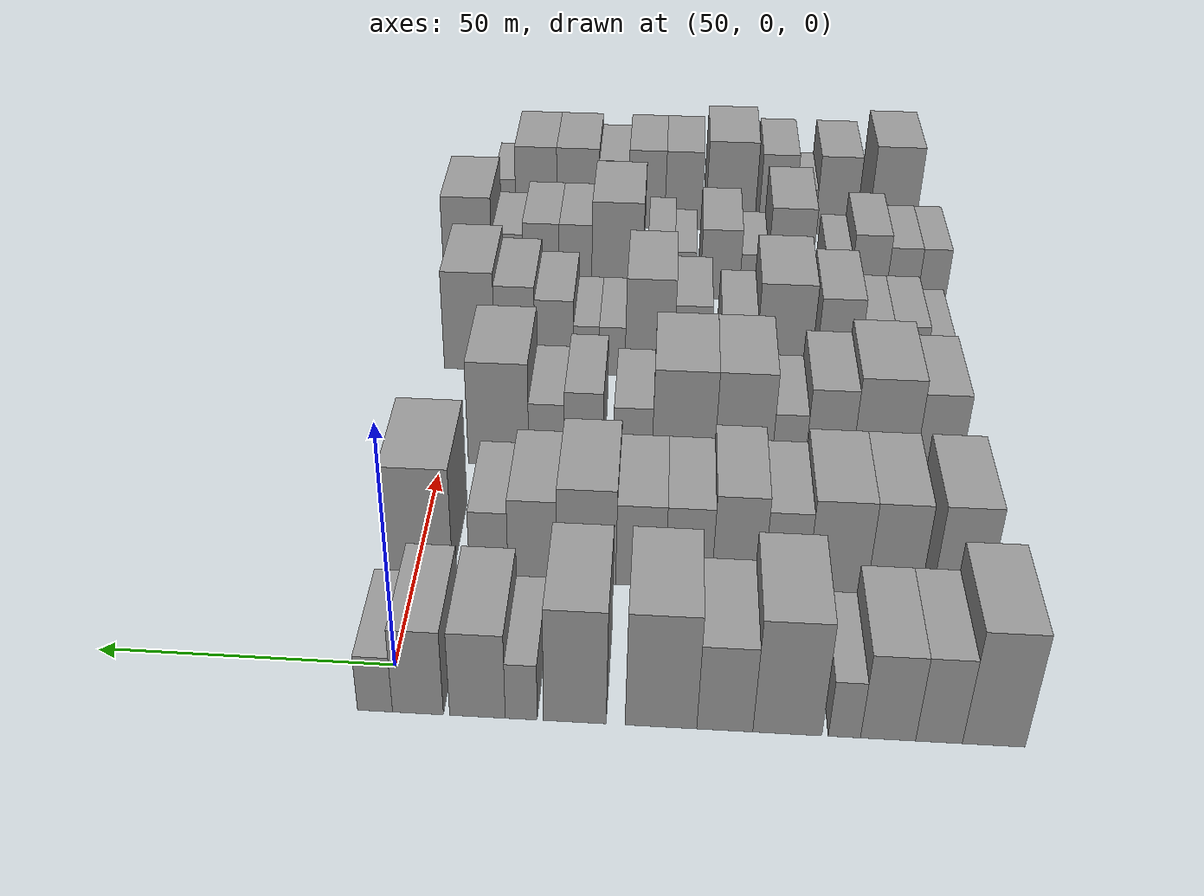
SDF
<sdf version="1.6">
 <world name="default">
  <model name="building_45">
   <static>1</static>
   <pose>50.0000 -95.6676 0 0.000000 0.000000 0.000000</pose>
   <link name="link">
    <pose>0 0 12.00 0 0 0</pose>
    <collision name="collision"><geometry><box><size>20.0000 9.6616 24.0000</size></box></geometry></collision>
    <visual name="visual">
     <cast_shadows>0</cast_shadows>
     <geometry><box><size>20.0000 9.6616 24.0000</size></box></geometry>
     <material>
      <script>
       <uri>model://grey_wall/materials/scripts</uri>
       <uri>model://grey_wall/materials/textures</uri>
       <name>vrc/grey_wall</name>
      </script>
     </material>
    </visual>
   </link>
  </model>
  <model name="building_46">
   <static>1</static>
   <pose>50.0000 -87.2326 0 0.000000 0.000000 0.000000</pose>
   <link name="link">
    <pose>0 0 9.00 0 0 0</pose>
    <collision name="collision"><geometry><box><size>20.0000 7.2084 18.0000</size></box></geometry></collision>
    <visual name="visual">
     <cast_shadows>0</cast_shadows>
     <geometry><box><size>20.0000 7.2084 18.0000</size></box></geometry>
     <material>
      <script>
       <uri>model://grey_wall/materials/scripts</uri>
       <uri>model://grey_wall/materials/textures</uri>
       <name>vrc/grey_wall</name>
      </script>
     </material>
    </visual>
   </link>
  </model>
  <model name="building_47">
   <static>1</static>
   <pose>50.0000 -79.3638 0 0.000000 0.000000 0.000000</pose>
   <link name="link">
    <pose>0 0 9.00 0 0 0</pose>
    <collision name="collision"><geometry><box><size>20.0000 8.5292 18.0000</size></box></geometry></collision>
    <visual name="visual">
     <cast_shadows>0</cast_shadows>
     <geometry><box><size>20.0000 8.5292 18.0000</size></box></geometry>
     <material>
      <script>
       <uri>model://grey_wall/materials/scripts</uri>
       <uri>model://grey_wall/materials/textures</uri>
       <name>vrc/grey_wall</name>
      </script>
     </material>
    </visual>
   </link>
  </model>
  <model name="building_48">
   <static>1</static>
   <pose>50.0000 -72.6055 0 0.000000 0.000000 0.000000</pose>
   <link name="link">
    <pose>0 0 6.00 0 0 0</pose>
    <collision name="collision"><geometry><box><size>20.0000 4.9873 12.0000</size></box></geometry></collision>
    <visual name="visual">
     <cast_shadows>0</cast_shadows>
     <geometry><box><size>20.0000 4.9873 12.0000</size></box></geometry>
     <material>
      <script>
       <uri>model://grey_wall/materials/scripts</uri>
       <uri>model://grey_wall/materials/textures</uri>
       <name>vrc/grey_wall</name>
      </script>
     </material>
    </visual>
   </link>
  </model>
  <model name="building_49">
   <static>1</static>
   <pose>50.0000 -63.7204 0 0.000000 0.000000 0.000000</pose>
   <link name="link">
    <pose>0 0 12.00 0 0 0</pose>
    <collision name="collision"><geometry><box><size>20.0000 10.7830 24.0000</size></box></geometry></collision>
    <visual name="visual">
     <cast_shadows>0</cast_shadows>
     <geometry><box><size>20.0000 10.7830 24.0000</size></box></geometry>
     <material>
      <script>
       <uri>model://grey_wall/materials/scripts</uri>
       <uri>model://grey_wall/materials/textures</uri>
       <name>vrc/grey_wall</name>
      </script>
     </material>
    </visual>
   </link>
  </model>
  <model name="building_50">
   <static>1</static>
   <pose>50.0000 -53.9373 0 0.000000 0.000000 0.000000</pose>
   <link name="link">
    <pose>0 0 9.00 0 0 0</pose>
    <collision name="collision"><geometry><box><size>20.0000 8.7832 18.0000</size></box></geometry></collision>
    <visual name="visual">
     <cast_shadows>0</cast_shadows>
     <geometry><box><size>20.0000 8.7832 18.0000</size></box></geometry>
     <material>
      <script>
       <uri>model://grey_wall/materials/scripts</uri>
       <uri>model://grey_wall/materials/textures</uri>
       <name>vrc/grey_wall</name>
      </script>
     </material>
    </visual>
   </link>
  </model>
  <model name="building_51">
   <static>1</static>
   <pose>50.0000 -43.9038 0 0.000000 0.000000 0.000000</pose>
   <link name="link">
    <pose>0 0 12.00 0 0 0</pose>
    <collision name="collision"><geometry><box><size>20.0000 11.2838 24.0000</size></box></geometry></collision>
    <visual name="visual">
     <cast_shadows>0</cast_shadows>
     <geometry><box><size>20.0000 11.2838 24.0000</size></box></geometry>
     <material>
      <script>
       <uri>model://grey_wall/materials/scripts</uri>
       <uri>model://grey_wall/materials/textures</uri>
       <name>vrc/grey_wall</name>
      </script>
     </material>
    </visual>
   </link>
  </model>
  <model name="building_52">
   <static>1</static>
   <pose>50.0000 -30.2886 0 0.000000 0.000000 0.000000</pose>
   <link name="link">
    <pose>0 0 12.00 0 0 0</pose>
    <collision name="collision"><geometry><box><size>20.0000 9.9465 24.0000</size></box></geometry></collision>
    <visual name="visual">
     <cast_shadows>0</cast_shadows>
     <geometry><box><size>20.0000 9.9465 24.0000</size></box></geometry>
     <material>
      <script>
       <uri>model://grey_wall/materials/scripts</uri>
       <uri>model://grey_wall/materials/textures</uri>
       <name>vrc/grey_wall</name>
      </script>
     </material>
    </visual>
   </link>
  </model>
  <model name="building_53">
   <static>1</static>
   <pose>50.0000 -21.7753 0 0.000000 0.000000 0.000000</pose>
   <link name="link">
    <pose>0 0 6.00 0 0 0</pose>
    <collision name="collision"><geometry><box><size>20.0000 5.0801 12.0000</size></box></geometry></collision>
    <visual name="visual">
     <cast_shadows>0</cast_shadows>
     <geometry><box><size>20.0000 5.0801 12.0000</size></box></geometry>
     <material>
      <script>
       <uri>model://grey_wall/materials/scripts</uri>
       <uri>model://grey_wall/materials/textures</uri>
       <name>vrc/grey_wall</name>
      </script>
     </material>
    </visual>
   </link>
  </model>
  <model name="building_54">
   <static>1</static>
   <pose>50.0000 -14.7899 0 0.000000 0.000000 0.000000</pose>
   <link name="link">
    <pose>0 0 9.00 0 0 0</pose>
    <collision name="collision"><geometry><box><size>20.0000 8.8905 18.0000</size></box></geometry></collision>
    <visual name="visual">
     <cast_shadows>0</cast_shadows>
     <geometry><box><size>20.0000 8.8905 18.0000</size></box></geometry>
     <material>
      <script>
       <uri>model://grey_wall/materials/scripts</uri>
       <uri>model://grey_wall/materials/textures</uri>
       <name>vrc/grey_wall</name>
      </script>
     </material>
    </visual>
   </link>
  </model>
  <model name="building_55">
   <static>1</static>
   <pose>50.0000 -5.2620 0 0.000000 0.000000 0.000000</pose>
   <link name="link">
    <pose>0 0 9.00 0 0 0</pose>
    <collision name="collision"><geometry><box><size>20.0000 8.1654 18.0000</size></box></geometry></collision>
    <visual name="visual">
     <cast_shadows>0</cast_shadows>
     <geometry><box><size>20.0000 8.1654 18.0000</size></box></geometry>
     <material>
      <script>
       <uri>model://grey_wall/materials/scripts</uri>
       <uri>model://grey_wall/materials/textures</uri>
       <name>vrc/grey_wall</name>
      </script>
     </material>
    </visual>
   </link>
  </model>
  <model name="building_56">
   <static>1</static>
   <pose>50.0000 1.6433 0 0.000000 0.000000 0.000000</pose>
   <link name="link">
    <pose>0 0 6.00 0 0 0</pose>
    <collision name="collision"><geometry><box><size>20.0000 5.6452 12.0000</size></box></geometry></collision>
    <visual name="visual">
     <cast_shadows>0</cast_shadows>
     <geometry><box><size>20.0000 5.6452 12.0000</size></box></geometry>
     <material>
      <script>
       <uri>model://grey_wall/materials/scripts</uri>
       <uri>model://grey_wall/materials/textures</uri>
       <name>vrc/grey_wall</name>
      </script>
     </material>
    </visual>
   </link>
  </model>
  <model name="building_149">
   <static>1</static>
   <pose>82.0000 -95.0042 0 0.000000 0.000000 0.000000</pose>
   <link name="link">
    <pose>0 0 10.50 0 0 0</pose>
    <collision name="collision"><geometry><box><size>20.0000 9.5501 21.0000</size></box></geometry></collision>
    <visual name="visual">
     <cast_shadows>0</cast_shadows>
     <geometry><box><size>20.0000 9.5501 21.0000</size></box></geometry>
     <material>
      <script>
       <uri>model://grey_wall/materials/scripts</uri>
       <uri>model://grey_wall/materials/textures</uri>
       <name>vrc/grey_wall</name>
      </script>
     </material>
    </visual>
   </link>
  </model>
  <model name="building_150">
   <static>1</static>
   <pose>82.0000 -83.6209 0 0.000000 0.000000 0.000000</pose>
   <link name="link">
    <pose>0 0 10.50 0 0 0</pose>
    <collision name="collision"><geometry><box><size>20.0000 9.2165 21.0000</size></box></geometry></collision>
    <visual name="visual">
     <cast_shadows>0</cast_shadows>
     <geometry><box><size>20.0000 9.2165 21.0000</size></box></geometry>
     <material>
      <script>
       <uri>model://grey_wall/materials/scripts</uri>
       <uri>model://grey_wall/materials/textures</uri>
       <name>vrc/grey_wall</name>
      </script>
     </material>
    </visual>
   </link>
  </model>
  <model name="building_151">
   <static>1</static>
   <pose>82.0000 -73.8313 0 0.000000 0.000000 0.000000</pose>
   <link name="link">
    <pose>0 0 10.50 0 0 0</pose>
    <collision name="collision"><geometry><box><size>20.0000 10.3627 21.0000</size></box></geometry></collision>
    <visual name="visual">
     <cast_shadows>0</cast_shadows>
     <geometry><box><size>20.0000 10.3627 21.0000</size></box></geometry>
     <material>
      <script>
       <uri>model://grey_wall/materials/scripts</uri>
       <uri>model://grey_wall/materials/textures</uri>
       <name>vrc/grey_wall</name>
      </script>
     </material>
    </visual>
   </link>
  </model>
  <model name="building_152">
   <static>1</static>
   <pose>82.0000 -64.8846 0 0.000000 0.000000 0.000000</pose>
   <link name="link">
    <pose>0 0 9.00 0 0 0</pose>
    <collision name="collision"><geometry><box><size>20.0000 7.5306 18.0000</size></box></geometry></collision>
    <visual name="visual">
     <cast_shadows>0</cast_shadows>
     <geometry><box><size>20.0000 7.5306 18.0000</size></box></geometry>
     <material>
      <script>
       <uri>model://grey_wall/materials/scripts</uri>
       <uri>model://grey_wall/materials/textures</uri>
       <name>vrc/grey_wall</name>
      </script>
     </material>
    </visual>
   </link>
  </model>
  <model name="building_153">
   <static>1</static>
   <pose>82.0000 -56.6148 0 0.000000 0.000000 0.000000</pose>
   <link name="link">
    <pose>0 0 10.50 0 0 0</pose>
    <collision name="collision"><geometry><box><size>20.0000 9.0090 21.0000</size></box></geometry></collision>
    <visual name="visual">
     <cast_shadows>0</cast_shadows>
     <geometry><box><size>20.0000 9.0090 21.0000</size></box></geometry>
     <material>
      <script>
       <uri>model://grey_wall/materials/scripts</uri>
       <uri>model://grey_wall/materials/textures</uri>
       <name>vrc/grey_wall</name>
      </script>
     </material>
    </visual>
   </link>
  </model>
  <model name="building_154">
   <static>1</static>
   <pose>82.0000 -48.0225 0 0.000000 0.000000 0.000000</pose>
   <link name="link">
    <pose>0 0 9.00 0 0 0</pose>
    <collision name="collision"><geometry><box><size>20.0000 8.1756 18.0000</size></box></geometry></collision>
    <visual name="visual">
     <cast_shadows>0</cast_shadows>
     <geometry><box><size>20.0000 8.1756 18.0000</size></box></geometry>
     <material>
      <script>
       <uri>model://grey_wall/materials/scripts</uri>
       <uri>model://grey_wall/materials/textures</uri>
       <name>vrc/grey_wall</name>
      </script>
     </material>
    </visual>
   </link>
  </model>
  <model name="building_155">
   <static>1</static>
   <pose>82.0000 -39.6415 0 0.000000 0.000000 0.000000</pose>
   <link name="link">
    <pose>0 0 9.00 0 0 0</pose>
    <collision name="collision"><geometry><box><size>20.0000 8.5864 18.0000</size></box></geometry></collision>
    <visual name="visual">
     <cast_shadows>0</cast_shadows>
     <geometry><box><size>20.0000 8.5864 18.0000</size></box></geometry>
     <material>
      <script>
       <uri>model://grey_wall/materials/scripts</uri>
       <uri>model://grey_wall/materials/textures</uri>
       <name>vrc/grey_wall</name>
      </script>
     </material>
    </visual>
   </link>
  </model>
  <model name="building_156">
   <static>1</static>
   <pose>82.0000 -30.1468 0 0.000000 0.000000 0.000000</pose>
   <link name="link">
    <pose>0 0 10.50 0 0 0</pose>
    <collision name="collision"><geometry><box><size>20.0000 10.4030 21.0000</size></box></geometry></collision>
    <visual name="visual">
     <cast_shadows>0</cast_shadows>
     <geometry><box><size>20.0000 10.4030 21.0000</size></box></geometry>
     <material>
      <script>
       <uri>model://grey_wall/materials/scripts</uri>
       <uri>model://grey_wall/materials/textures</uri>
       <name>vrc/grey_wall</name>
      </script>
     </material>
    </visual>
   </link>
  </model>
  <model name="building_157">
   <static>1</static>
   <pose>82.0000 -20.6657 0 0.000000 0.000000 0.000000</pose>
   <link name="link">
    <pose>0 0 9.00 0 0 0</pose>
    <collision name="collision"><geometry><box><size>20.0000 8.5592 18.0000</size></box></geometry></collision>
    <visual name="visual">
     <cast_shadows>0</cast_shadows>
     <geometry><box><size>20.0000 8.5592 18.0000</size></box></geometry>
     <material>
      <script>
       <uri>model://grey_wall/materials/scripts</uri>
       <uri>model://grey_wall/materials/textures</uri>
       <name>vrc/grey_wall</name>
      </script>
     </material>
    </visual>
   </link>
  </model>
  <model name="building_158">
   <static>1</static>
   <pose>82.0000 -12.9702 0 0.000000 0.000000 0.000000</pose>
   <link name="link">
    <pose>0 0 7.50 0 0 0</pose>
    <collision name="collision"><geometry><box><size>20.0000 6.8317 15.0000</size></box></geometry></collision>
    <visual name="visual">
     <cast_shadows>0</cast_shadows>
     <geometry><box><size>20.0000 6.8317 15.0000</size></box></geometry>
     <material>
      <script>
       <uri>model://grey_wall/materials/scripts</uri>
       <uri>model://grey_wall/materials/textures</uri>
       <name>vrc/grey_wall</name>
      </script>
     </material>
    </visual>
   </link>
  </model>
  <model name="building_159">
   <static>1</static>
   <pose>82.0000 -0.5578 0 0.000000 0.000000 0.000000</pose>
   <link name="link">
    <pose>0 0 12.00 0 0 0</pose>
    <collision name="collision"><geometry><box><size>20.0000 11.9931 24.0000</size></box></geometry></collision>
    <visual name="visual">
     <cast_shadows>0</cast_shadows>
     <geometry><box><size>20.0000 11.9931 24.0000</size></box></geometry>
     <material>
      <script>
       <uri>model://grey_wall/materials/scripts</uri>
       <uri>model://grey_wall/materials/textures</uri>
       <name>vrc/grey_wall</name>
      </script>
     </material>
    </visual>
   </link>
  </model>
  <model name="building_267">
   <static>1</static>
   <pose>114.0000 -95.1274 0 0.000000 0.000000 0.000000</pose>
   <link name="link">
    <pose>0 0 10.50 0 0 0</pose>
    <collision name="collision"><geometry><box><size>20.0000 8.5143 21.0000</size></box></geometry></collision>
    <visual name="visual">
     <cast_shadows>0</cast_shadows>
     <geometry><box><size>20.0000 8.5143 21.0000</size></box></geometry>
     <material>
      <script>
       <uri>model://grey_wall/materials/scripts</uri>
       <uri>model://grey_wall/materials/textures</uri>
       <name>vrc/grey_wall</name>
      </script>
     </material>
    </visual>
   </link>
  </model>
  <model name="building_268">
   <static>1</static>
   <pose>114.0000 -84.8776 0 0.000000 0.000000 0.000000</pose>
   <link name="link">
    <pose>0 0 12.00 0 0 0</pose>
    <collision name="collision"><geometry><box><size>20.0000 11.9854 24.0000</size></box></geometry></collision>
    <visual name="visual">
     <cast_shadows>0</cast_shadows>
     <geometry><box><size>20.0000 11.9854 24.0000</size></box></geometry>
     <material>
      <script>
       <uri>model://grey_wall/materials/scripts</uri>
       <uri>model://grey_wall/materials/textures</uri>
       <name>vrc/grey_wall</name>
      </script>
     </material>
    </visual>
   </link>
  </model>
  <model name="building_269">
   <static>1</static>
   <pose>114.0000 -74.4719 0 0.000000 0.000000 0.000000</pose>
   <link name="link">
    <pose>0 0 10.50 0 0 0</pose>
    <collision name="collision"><geometry><box><size>20.0000 8.8259 21.0000</size></box></geometry></collision>
    <visual name="visual">
     <cast_shadows>0</cast_shadows>
     <geometry><box><size>20.0000 8.8259 21.0000</size></box></geometry>
     <material>
      <script>
       <uri>model://grey_wall/materials/scripts</uri>
       <uri>model://grey_wall/materials/textures</uri>
       <name>vrc/grey_wall</name>
      </script>
     </material>
    </visual>
   </link>
  </model>
  <model name="building_270">
   <static>1</static>
   <pose>114.0000 -66.9127 0 0.000000 0.000000 0.000000</pose>
   <link name="link">
    <pose>0 0 7.50 0 0 0</pose>
    <collision name="collision"><geometry><box><size>20.0000 6.2924 15.0000</size></box></geometry></collision>
    <visual name="visual">
     <cast_shadows>0</cast_shadows>
     <geometry><box><size>20.0000 6.2924 15.0000</size></box></geometry>
     <material>
      <script>
       <uri>model://grey_wall/materials/scripts</uri>
       <uri>model://grey_wall/materials/textures</uri>
       <name>vrc/grey_wall</name>
      </script>
     </material>
    </visual>
   </link>
  </model>
  <model name="building_271">
   <static>1</static>
   <pose>114.0000 -58.3142 0 0.000000 0.000000 0.000000</pose>
   <link name="link">
    <pose>0 0 12.00 0 0 0</pose>
    <collision name="collision"><geometry><box><size>20.0000 10.9047 24.0000</size></box></geometry></collision>
    <visual name="visual">
     <cast_shadows>0</cast_shadows>
     <geometry><box><size>20.0000 10.9047 24.0000</size></box></geometry>
     <material>
      <script>
       <uri>model://grey_wall/materials/scripts</uri>
       <uri>model://grey_wall/materials/textures</uri>
       <name>vrc/grey_wall</name>
      </script>
     </material>
    </visual>
   </link>
  </model>
  <model name="building_272">
   <static>1</static>
   <pose>114.0000 -46.8731 0 0.000000 0.000000 0.000000</pose>
   <link name="link">
    <pose>0 0 12.00 0 0 0</pose>
    <collision name="collision"><geometry><box><size>20.0000 11.9774 24.0000</size></box></geometry></collision>
    <visual name="visual">
     <cast_shadows>0</cast_shadows>
     <geometry><box><size>20.0000 11.9774 24.0000</size></box></geometry>
     <material>
      <script>
       <uri>model://grey_wall/materials/scripts</uri>
       <uri>model://grey_wall/materials/textures</uri>
       <name>vrc/grey_wall</name>
      </script>
     </material>
    </visual>
   </link>
  </model>
  <model name="building_273">
   <static>1</static>
   <pose>114.0000 -37.1674 0 0.000000 0.000000 0.000000</pose>
   <link name="link">
    <pose>0 0 7.50 0 0 0</pose>
    <collision name="collision"><geometry><box><size>20.0000 7.4342 15.0000</size></box></geometry></collision>
    <visual name="visual">
     <cast_shadows>0</cast_shadows>
     <geometry><box><size>20.0000 7.4342 15.0000</size></box></geometry>
     <material>
      <script>
       <uri>model://grey_wall/materials/scripts</uri>
       <uri>model://grey_wall/materials/textures</uri>
       <name>vrc/grey_wall</name>
      </script>
     </material>
    </visual>
   </link>
  </model>
  <model name="building_274">
   <static>1</static>
   <pose>114.0000 -27.7327 0 0.000000 0.000000 0.000000</pose>
   <link name="link">
    <pose>0 0 9.00 0 0 0</pose>
    <collision name="collision"><geometry><box><size>20.0000 7.4352 18.0000</size></box></geometry></collision>
    <visual name="visual">
     <cast_shadows>0</cast_shadows>
     <geometry><box><size>20.0000 7.4352 18.0000</size></box></geometry>
     <material>
      <script>
       <uri>model://grey_wall/materials/scripts</uri>
       <uri>model://grey_wall/materials/textures</uri>
       <name>vrc/grey_wall</name>
      </script>
     </material>
    </visual>
   </link>
  </model>
  <model name="building_275">
   <static>1</static>
   <pose>114.0000 -20.5681 0 0.000000 0.000000 0.000000</pose>
   <link name="link">
    <pose>0 0 7.50 0 0 0</pose>
    <collision name="collision"><geometry><box><size>20.0000 6.8940 15.0000</size></box></geometry></collision>
    <visual name="visual">
     <cast_shadows>0</cast_shadows>
     <geometry><box><size>20.0000 6.8940 15.0000</size></box></geometry>
     <material>
      <script>
       <uri>model://grey_wall/materials/scripts</uri>
       <uri>model://grey_wall/materials/textures</uri>
       <name>vrc/grey_wall</name>
      </script>
     </material>
    </visual>
   </link>
  </model>
  <model name="building_276">
   <static>1</static>
   <pose>114.0000 -11.2187 0 0.000000 0.000000 0.000000</pose>
   <link name="link">
    <pose>0 0 12.00 0 0 0</pose>
    <collision name="collision"><geometry><box><size>20.0000 11.8048 24.0000</size></box></geometry></collision>
    <visual name="visual">
     <cast_shadows>0</cast_shadows>
     <geometry><box><size>20.0000 11.8048 24.0000</size></box></geometry>
     <material>
      <script>
       <uri>model://grey_wall/materials/scripts</uri>
       <uri>model://grey_wall/materials/textures</uri>
       <name>vrc/grey_wall</name>
      </script>
     </material>
    </visual>
   </link>
  </model>
  <model name="building_385">
   <static>1</static>
   <pose>146.0000 -99.4421 0 0.000000 0.000000 0.000000</pose>
   <link name="link">
    <pose>0 0 6.00 0 0 0</pose>
    <collision name="collision"><geometry><box><size>20.0000 5.4247 12.0000</size></box></geometry></collision>
    <visual name="visual">
     <cast_shadows>0</cast_shadows>
     <geometry><box><size>20.0000 5.4247 12.0000</size></box></geometry>
     <material>
      <script>
       <uri>model://grey_wall/materials/scripts</uri>
       <uri>model://grey_wall/materials/textures</uri>
       <name>vrc/grey_wall</name>
      </script>
     </material>
    </visual>
   </link>
  </model>
  <model name="building_386">
   <static>1</static>
   <pose>146.0000 -93.1561 0 0.000000 0.000000 0.000000</pose>
   <link name="link">
    <pose>0 0 7.50 0 0 0</pose>
    <collision name="collision"><geometry><box><size>20.0000 7.1473 15.0000</size></box></geometry></collision>
    <visual name="visual">
     <cast_shadows>0</cast_shadows>
     <geometry><box><size>20.0000 7.1473 15.0000</size></box></geometry>
     <material>
      <script>
       <uri>model://grey_wall/materials/scripts</uri>
       <uri>model://grey_wall/materials/textures</uri>
       <name>vrc/grey_wall</name>
      </script>
     </material>
    </visual>
   </link>
  </model>
  <model name="building_387">
   <static>1</static>
   <pose>146.0000 -86.3762 0 0.000000 0.000000 0.000000</pose>
   <link name="link">
    <pose>0 0 7.50 0 0 0</pose>
    <collision name="collision"><geometry><box><size>20.0000 6.4125 15.0000</size></box></geometry></collision>
    <visual name="visual">
     <cast_shadows>0</cast_shadows>
     <geometry><box><size>20.0000 6.4125 15.0000</size></box></geometry>
     <material>
      <script>
       <uri>model://grey_wall/materials/scripts</uri>
       <uri>model://grey_wall/materials/textures</uri>
       <name>vrc/grey_wall</name>
      </script>
     </material>
    </visual>
   </link>
  </model>
  <model name="building_388">
   <static>1</static>
   <pose>146.0000 -78.7064 0 0.000000 0.000000 0.000000</pose>
   <link name="link">
    <pose>0 0 10.50 0 0 0</pose>
    <collision name="collision"><geometry><box><size>20.0000 8.9271 21.0000</size></box></geometry></collision>
    <visual name="visual">
     <cast_shadows>0</cast_shadows>
     <geometry><box><size>20.0000 8.9271 21.0000</size></box></geometry>
     <material>
      <script>
       <uri>model://grey_wall/materials/scripts</uri>
       <uri>model://grey_wall/materials/textures</uri>
       <name>vrc/grey_wall</name>
      </script>
     </material>
    </visual>
   </link>
  </model>
  <model name="building_389">
   <static>1</static>
   <pose>146.0000 -67.4989 0 0.000000 0.000000 0.000000</pose>
   <link name="link">
    <pose>0 0 12.00 0 0 0</pose>
    <collision name="collision"><geometry><box><size>20.0000 11.4879 24.0000</size></box></geometry></collision>
    <visual name="visual">
     <cast_shadows>0</cast_shadows>
     <geometry><box><size>20.0000 11.4879 24.0000</size></box></geometry>
     <material>
      <script>
       <uri>model://grey_wall/materials/scripts</uri>
       <uri>model://grey_wall/materials/textures</uri>
       <name>vrc/grey_wall</name>
      </script>
     </material>
    </visual>
   </link>
  </model>
  <model name="building_390">
   <static>1</static>
   <pose>146.0000 -58.0126 0 0.000000 0.000000 0.000000</pose>
   <link name="link">
    <pose>0 0 7.50 0 0 0</pose>
    <collision name="collision"><geometry><box><size>20.0000 7.4848 15.0000</size></box></geometry></collision>
    <visual name="visual">
     <cast_shadows>0</cast_shadows>
     <geometry><box><size>20.0000 7.4848 15.0000</size></box></geometry>
     <material>
      <script>
       <uri>model://grey_wall/materials/scripts</uri>
       <uri>model://grey_wall/materials/textures</uri>
       <name>vrc/grey_wall</name>
      </script>
     </material>
    </visual>
   </link>
  </model>
  <model name="building_391">
   <static>1</static>
   <pose>146.0000 -48.4838 0 0.000000 0.000000 0.000000</pose>
   <link name="link">
    <pose>0 0 9.00 0 0 0</pose>
    <collision name="collision"><geometry><box><size>20.0000 7.5729 18.0000</size></box></geometry></collision>
    <visual name="visual">
     <cast_shadows>0</cast_shadows>
     <geometry><box><size>20.0000 7.5729 18.0000</size></box></geometry>
     <material>
      <script>
       <uri>model://grey_wall/materials/scripts</uri>
       <uri>model://grey_wall/materials/textures</uri>
       <name>vrc/grey_wall</name>
      </script>
     </material>
    </visual>
   </link>
  </model>
  <model name="building_392">
   <static>1</static>
   <pose>146.0000 -39.6119 0 0.000000 0.000000 0.000000</pose>
   <link name="link">
    <pose>0 0 12.00 0 0 0</pose>
    <collision name="collision"><geometry><box><size>20.0000 10.1710 24.0000</size></box></geometry></collision>
    <visual name="visual">
     <cast_shadows>0</cast_shadows>
     <geometry><box><size>20.0000 10.1710 24.0000</size></box></geometry>
     <material>
      <script>
       <uri>model://grey_wall/materials/scripts</uri>
       <uri>model://grey_wall/materials/textures</uri>
       <name>vrc/grey_wall</name>
      </script>
     </material>
    </visual>
   </link>
  </model>
  <model name="building_393">
   <static>1</static>
   <pose>146.0000 -31.7596 0 0.000000 0.000000 0.000000</pose>
   <link name="link">
    <pose>0 0 6.00 0 0 0</pose>
    <collision name="collision"><geometry><box><size>20.0000 5.5335 12.0000</size></box></geometry></collision>
    <visual name="visual">
     <cast_shadows>0</cast_shadows>
     <geometry><box><size>20.0000 5.5335 12.0000</size></box></geometry>
     <material>
      <script>
       <uri>model://grey_wall/materials/scripts</uri>
       <uri>model://grey_wall/materials/textures</uri>
       <name>vrc/grey_wall</name>
      </script>
     </material>
    </visual>
   </link>
  </model>
  <model name="building_394">
   <static>1</static>
   <pose>146.0000 -26.3055 0 0.000000 0.000000 0.000000</pose>
   <link name="link">
    <pose>0 0 6.00 0 0 0</pose>
    <collision name="collision"><geometry><box><size>20.0000 5.3748 12.0000</size></box></geometry></collision>
    <visual name="visual">
     <cast_shadows>0</cast_shadows>
     <geometry><box><size>20.0000 5.3748 12.0000</size></box></geometry>
     <material>
      <script>
       <uri>model://grey_wall/materials/scripts</uri>
       <uri>model://grey_wall/materials/textures</uri>
       <name>vrc/grey_wall</name>
      </script>
     </material>
    </visual>
   </link>
  </model>
  <model name="building_395">
   <static>1</static>
   <pose>146.0000 -19.5446 0 0.000000 0.000000 0.000000</pose>
   <link name="link">
    <pose>0 0 9.00 0 0 0</pose>
    <collision name="collision"><geometry><box><size>20.0000 8.1469 18.0000</size></box></geometry></collision>
    <visual name="visual">
     <cast_shadows>0</cast_shadows>
     <geometry><box><size>20.0000 8.1469 18.0000</size></box></geometry>
     <material>
      <script>
       <uri>model://grey_wall/materials/scripts</uri>
       <uri>model://grey_wall/materials/textures</uri>
       <name>vrc/grey_wall</name>
      </script>
     </material>
    </visual>
   </link>
  </model>
  <model name="building_396">
   <static>1</static>
   <pose>146.0000 -11.2219 0 0.000000 0.000000 0.000000</pose>
   <link name="link">
    <pose>0 0 10.50 0 0 0</pose>
    <collision name="collision"><geometry><box><size>20.0000 8.4985 21.0000</size></box></geometry></collision>
    <visual name="visual">
     <cast_shadows>0</cast_shadows>
     <geometry><box><size>20.0000 8.4985 21.0000</size></box></geometry>
     <material>
      <script>
       <uri>model://grey_wall/materials/scripts</uri>
       <uri>model://grey_wall/materials/textures</uri>
       <name>vrc/grey_wall</name>
      </script>
     </material>
    </visual>
   </link>
  </model>
  <model name="building_397">
   <static>1</static>
   <pose>146.0000 -1.5701 0 0.000000 0.000000 0.000000</pose>
   <link name="link">
    <pose>0 0 12.00 0 0 0</pose>
    <collision name="collision"><geometry><box><size>20.0000 10.8052 24.0000</size></box></geometry></collision>
    <visual name="visual">
     <cast_shadows>0</cast_shadows>
     <geometry><box><size>20.0000 10.8052 24.0000</size></box></geometry>
     <material>
      <script>
       <uri>model://grey_wall/materials/scripts</uri>
       <uri>model://grey_wall/materials/textures</uri>
       <name>vrc/grey_wall</name>
      </script>
     </material>
    </visual>
   </link>
  </model>
  <model name="building_512">
   <static>1</static>
   <pose>178.0000 -102.5026 0 0.000000 0.000000 0.000000</pose>
   <link name="link">
    <pose>0 0 7.50 0 0 0</pose>
    <collision name="collision"><geometry><box><size>20.0000 6.2351 15.0000</size></box></geometry></collision>
    <visual name="visual">
     <cast_shadows>0</cast_shadows>
     <geometry><box><size>20.0000 6.2351 15.0000</size></box></geometry>
     <material>
      <script>
       <uri>model://grey_wall/materials/scripts</uri>
       <uri>model://grey_wall/materials/textures</uri>
       <name>vrc/grey_wall</name>
      </script>
     </material>
    </visual>
   </link>
  </model>
  <model name="building_513">
   <static>1</static>
   <pose>178.0000 -95.8142 0 0.000000 0.000000 0.000000</pose>
   <link name="link">
    <pose>0 0 7.50 0 0 0</pose>
    <collision name="collision"><geometry><box><size>20.0000 7.1418 15.0000</size></box></geometry></collision>
    <visual name="visual">
     <cast_shadows>0</cast_shadows>
     <geometry><box><size>20.0000 7.1418 15.0000</size></box></geometry>
     <material>
      <script>
       <uri>model://grey_wall/materials/scripts</uri>
       <uri>model://grey_wall/materials/textures</uri>
       <name>vrc/grey_wall</name>
      </script>
     </material>
    </visual>
   </link>
  </model>
  <model name="building_514">
   <static>1</static>
   <pose>178.0000 -88.1749 0 0.000000 0.000000 0.000000</pose>
   <link name="link">
    <pose>0 0 9.00 0 0 0</pose>
    <collision name="collision"><geometry><box><size>20.0000 8.1367 18.0000</size></box></geometry></collision>
    <visual name="visual">
     <cast_shadows>0</cast_shadows>
     <geometry><box><size>20.0000 8.1367 18.0000</size></box></geometry>
     <material>
      <script>
       <uri>model://grey_wall/materials/scripts</uri>
       <uri>model://grey_wall/materials/textures</uri>
       <name>vrc/grey_wall</name>
      </script>
     </material>
    </visual>
   </link>
  </model>
  <model name="building_515">
   <static>1</static>
   <pose>178.0000 -81.1768 0 0.000000 0.000000 0.000000</pose>
   <link name="link">
    <pose>0 0 6.00 0 0 0</pose>
    <collision name="collision"><geometry><box><size>20.0000 5.8596 12.0000</size></box></geometry></collision>
    <visual name="visual">
     <cast_shadows>0</cast_shadows>
     <geometry><box><size>20.0000 5.8596 12.0000</size></box></geometry>
     <material>
      <script>
       <uri>model://grey_wall/materials/scripts</uri>
       <uri>model://grey_wall/materials/textures</uri>
       <name>vrc/grey_wall</name>
      </script>
     </material>
    </visual>
   </link>
  </model>
  <model name="building_516">
   <static>1</static>
   <pose>178.0000 -70.2776 0 0.000000 0.000000 0.000000</pose>
   <link name="link">
    <pose>0 0 12.00 0 0 0</pose>
    <collision name="collision"><geometry><box><size>20.0000 9.9387 24.0000</size></box></geometry></collision>
    <visual name="visual">
     <cast_shadows>0</cast_shadows>
     <geometry><box><size>20.0000 9.9387 24.0000</size></box></geometry>
     <material>
      <script>
       <uri>model://grey_wall/materials/scripts</uri>
       <uri>model://grey_wall/materials/textures</uri>
       <name>vrc/grey_wall</name>
      </script>
     </material>
    </visual>
   </link>
  </model>
  <model name="building_517">
   <static>1</static>
   <pose>178.0000 -62.3116 0 0.000000 0.000000 0.000000</pose>
   <link name="link">
    <pose>0 0 6.00 0 0 0</pose>
    <collision name="collision"><geometry><box><size>20.0000 5.9933 12.0000</size></box></geometry></collision>
    <visual name="visual">
     <cast_shadows>0</cast_shadows>
     <geometry><box><size>20.0000 5.9933 12.0000</size></box></geometry>
     <material>
      <script>
       <uri>model://grey_wall/materials/scripts</uri>
       <uri>model://grey_wall/materials/textures</uri>
       <name>vrc/grey_wall</name>
      </script>
     </material>
    </visual>
   </link>
  </model>
  <model name="building_518">
   <static>1</static>
   <pose>178.0000 -54.8487 0 0.000000 0.000000 0.000000</pose>
   <link name="link">
    <pose>0 0 9.00 0 0 0</pose>
    <collision name="collision"><geometry><box><size>20.0000 8.9326 18.0000</size></box></geometry></collision>
    <visual name="visual">
     <cast_shadows>0</cast_shadows>
     <geometry><box><size>20.0000 8.9326 18.0000</size></box></geometry>
     <material>
      <script>
       <uri>model://grey_wall/materials/scripts</uri>
       <uri>model://grey_wall/materials/textures</uri>
       <name>vrc/grey_wall</name>
      </script>
     </material>
    </visual>
   </link>
  </model>
  <model name="building_519">
   <static>1</static>
   <pose>178.0000 -46.8706 0 0.000000 0.000000 0.000000</pose>
   <link name="link">
    <pose>0 0 6.00 0 0 0</pose>
    <collision name="collision"><geometry><box><size>20.0000 5.0236 12.0000</size></box></geometry></collision>
    <visual name="visual">
     <cast_shadows>0</cast_shadows>
     <geometry><box><size>20.0000 5.0236 12.0000</size></box></geometry>
     <material>
      <script>
       <uri>model://grey_wall/materials/scripts</uri>
       <uri>model://grey_wall/materials/textures</uri>
       <name>vrc/grey_wall</name>
      </script>
     </material>
    </visual>
   </link>
  </model>
  <model name="building_520">
   <static>1</static>
   <pose>178.0000 -41.3242 0 0.000000 0.000000 0.000000</pose>
   <link name="link">
    <pose>0 0 7.50 0 0 0</pose>
    <collision name="collision"><geometry><box><size>20.0000 6.0692 15.0000</size></box></geometry></collision>
    <visual name="visual">
     <cast_shadows>0</cast_shadows>
     <geometry><box><size>20.0000 6.0692 15.0000</size></box></geometry>
     <material>
      <script>
       <uri>model://grey_wall/materials/scripts</uri>
       <uri>model://grey_wall/materials/textures</uri>
       <name>vrc/grey_wall</name>
      </script>
     </material>
    </visual>
   </link>
  </model>
  <model name="building_521">
   <static>1</static>
   <pose>178.0000 -31.4913 0 0.000000 0.000000 0.000000</pose>
   <link name="link">
    <pose>0 0 12.00 0 0 0</pose>
    <collision name="collision"><geometry><box><size>20.0000 11.5966 24.0000</size></box></geometry></collision>
    <visual name="visual">
     <cast_shadows>0</cast_shadows>
     <geometry><box><size>20.0000 11.5966 24.0000</size></box></geometry>
     <material>
      <script>
       <uri>model://grey_wall/materials/scripts</uri>
       <uri>model://grey_wall/materials/textures</uri>
       <name>vrc/grey_wall</name>
      </script>
     </material>
    </visual>
   </link>
  </model>
  <model name="building_522">
   <static>1</static>
   <pose>178.0000 -21.9716 0 0.000000 0.000000 0.000000</pose>
   <link name="link">
    <pose>0 0 9.00 0 0 0</pose>
    <collision name="collision"><geometry><box><size>20.0000 7.4429 18.0000</size></box></geometry></collision>
    <visual name="visual">
     <cast_shadows>0</cast_shadows>
     <geometry><box><size>20.0000 7.4429 18.0000</size></box></geometry>
     <material>
      <script>
       <uri>model://grey_wall/materials/scripts</uri>
       <uri>model://grey_wall/materials/textures</uri>
       <name>vrc/grey_wall</name>
      </script>
     </material>
    </visual>
   </link>
  </model>
  <model name="building_523">
   <static>1</static>
   <pose>178.0000 -14.0890 0 0.000000 0.000000 0.000000</pose>
   <link name="link">
    <pose>0 0 9.00 0 0 0</pose>
    <collision name="collision"><geometry><box><size>20.0000 8.3222 18.0000</size></box></geometry></collision>
    <visual name="visual">
     <cast_shadows>0</cast_shadows>
     <geometry><box><size>20.0000 8.3222 18.0000</size></box></geometry>
     <material>
      <script>
       <uri>model://grey_wall/materials/scripts</uri>
       <uri>model://grey_wall/materials/textures</uri>
       <name>vrc/grey_wall</name>
      </script>
     </material>
    </visual>
   </link>
  </model>
  <model name="building_524">
   <static>1</static>
   <pose>178.0000 -6.4036 0 0.000000 0.000000 0.000000</pose>
   <link name="link">
    <pose>0 0 7.50 0 0 0</pose>
    <collision name="collision"><geometry><box><size>20.0000 7.0486 15.0000</size></box></geometry></collision>
    <visual name="visual">
     <cast_shadows>0</cast_shadows>
     <geometry><box><size>20.0000 7.0486 15.0000</size></box></geometry>
     <material>
      <script>
       <uri>model://grey_wall/materials/scripts</uri>
       <uri>model://grey_wall/materials/textures</uri>
       <name>vrc/grey_wall</name>
      </script>
     </material>
    </visual>
   </link>
  </model>
  <model name="building_525">
   <static>1</static>
   <pose>178.0000 2.7098 0 0.000000 0.000000 0.000000</pose>
   <link name="link">
    <pose>0 0 12.00 0 0 0</pose>
    <collision name="collision"><geometry><box><size>20.0000 11.1782 24.0000</size></box></geometry></collision>
    <visual name="visual">
     <cast_shadows>0</cast_shadows>
     <geometry><box><size>20.0000 11.1782 24.0000</size></box></geometry>
     <material>
      <script>
       <uri>model://grey_wall/materials/scripts</uri>
       <uri>model://grey_wall/materials/textures</uri>
       <name>vrc/grey_wall</name>
      </script>
     </material>
    </visual>
   </link>
  </model>
  <model name="building_634">
   <static>1</static>
   <pose>210.0000 -97.1018 0 0.000000 0.000000 0.000000</pose>
   <link name="link">
    <pose>0 0 12.00 0 0 0</pose>
    <collision name="collision"><geometry><box><size>20.0000 11.2924 24.0000</size></box></geometry></collision>
    <visual name="visual">
     <cast_shadows>0</cast_shadows>
     <geometry><box><size>20.0000 11.2924 24.0000</size></box></geometry>
     <material>
      <script>
       <uri>model://grey_wall/materials/scripts</uri>
       <uri>model://grey_wall/materials/textures</uri>
       <name>vrc/grey_wall</name>
      </script>
     </material>
    </visual>
   </link>
  </model>
  <model name="building_635">
   <static>1</static>
   <pose>210.0000 -83.5336 0 0.000000 0.000000 0.000000</pose>
   <link name="link">
    <pose>0 0 10.50 0 0 0</pose>
    <collision name="collision"><geometry><box><size>20.0000 9.8442 21.0000</size></box></geometry></collision>
    <visual name="visual">
     <cast_shadows>0</cast_shadows>
     <geometry><box><size>20.0000 9.8442 21.0000</size></box></geometry>
     <material>
      <script>
       <uri>model://grey_wall/materials/scripts</uri>
       <uri>model://grey_wall/materials/textures</uri>
       <name>vrc/grey_wall</name>
      </script>
     </material>
    </visual>
   </link>
  </model>
  <model name="building_636">
   <static>1</static>
   <pose>210.0000 -76.0448 0 0.000000 0.000000 0.000000</pose>
   <link name="link">
    <pose>0 0 6.00 0 0 0</pose>
    <collision name="collision"><geometry><box><size>20.0000 5.1332 12.0000</size></box></geometry></collision>
    <visual name="visual">
     <cast_shadows>0</cast_shadows>
     <geometry><box><size>20.0000 5.1332 12.0000</size></box></geometry>
     <material>
      <script>
       <uri>model://grey_wall/materials/scripts</uri>
       <uri>model://grey_wall/materials/textures</uri>
       <name>vrc/grey_wall</name>
      </script>
     </material>
    </visual>
   </link>
  </model>
  <model name="building_637">
   <static>1</static>
   <pose>210.0000 -69.1537 0 0.000000 0.000000 0.000000</pose>
   <link name="link">
    <pose>0 0 10.50 0 0 0</pose>
    <collision name="collision"><geometry><box><size>20.0000 8.6491 21.0000</size></box></geometry></collision>
    <visual name="visual">
     <cast_shadows>0</cast_shadows>
     <geometry><box><size>20.0000 8.6491 21.0000</size></box></geometry>
     <material>
      <script>
       <uri>model://grey_wall/materials/scripts</uri>
       <uri>model://grey_wall/materials/textures</uri>
       <name>vrc/grey_wall</name>
      </script>
     </material>
    </visual>
   </link>
  </model>
  <model name="building_638">
   <static>1</static>
   <pose>210.0000 -57.8374 0 0.000000 0.000000 0.000000</pose>
   <link name="link">
    <pose>0 0 12.00 0 0 0</pose>
    <collision name="collision"><geometry><box><size>20.0000 11.9835 24.0000</size></box></geometry></collision>
    <visual name="visual">
     <cast_shadows>0</cast_shadows>
     <geometry><box><size>20.0000 11.9835 24.0000</size></box></geometry>
     <material>
      <script>
       <uri>model://grey_wall/materials/scripts</uri>
       <uri>model://grey_wall/materials/textures</uri>
       <name>vrc/grey_wall</name>
      </script>
     </material>
    </visual>
   </link>
  </model>
  <model name="building_639">
   <static>1</static>
   <pose>210.0000 -46.3428 0 0.000000 0.000000 0.000000</pose>
   <link name="link">
    <pose>0 0 10.50 0 0 0</pose>
    <collision name="collision"><geometry><box><size>20.0000 9.0056 21.0000</size></box></geometry></collision>
    <visual name="visual">
     <cast_shadows>0</cast_shadows>
     <geometry><box><size>20.0000 9.0056 21.0000</size></box></geometry>
     <material>
      <script>
       <uri>model://grey_wall/materials/scripts</uri>
       <uri>model://grey_wall/materials/textures</uri>
       <name>vrc/grey_wall</name>
      </script>
     </material>
    </visual>
   </link>
  </model>
  <model name="building_640">
   <static>1</static>
   <pose>210.0000 -37.3733 0 0.000000 0.000000 0.000000</pose>
   <link name="link">
    <pose>0 0 10.50 0 0 0</pose>
    <collision name="collision"><geometry><box><size>20.0000 8.9334 21.0000</size></box></geometry></collision>
    <visual name="visual">
     <cast_shadows>0</cast_shadows>
     <geometry><box><size>20.0000 8.9334 21.0000</size></box></geometry>
     <material>
      <script>
       <uri>model://grey_wall/materials/scripts</uri>
       <uri>model://grey_wall/materials/textures</uri>
       <name>vrc/grey_wall</name>
      </script>
     </material>
    </visual>
   </link>
  </model>
  <model name="building_641">
   <static>1</static>
   <pose>210.0000 -29.2797 0 0.000000 0.000000 0.000000</pose>
   <link name="link">
    <pose>0 0 9.00 0 0 0</pose>
    <collision name="collision"><geometry><box><size>20.0000 7.2539 18.0000</size></box></geometry></collision>
    <visual name="visual">
     <cast_shadows>0</cast_shadows>
     <geometry><box><size>20.0000 7.2539 18.0000</size></box></geometry>
     <material>
      <script>
       <uri>model://grey_wall/materials/scripts</uri>
       <uri>model://grey_wall/materials/textures</uri>
       <name>vrc/grey_wall</name>
      </script>
     </material>
    </visual>
   </link>
  </model>
  <model name="building_642">
   <static>1</static>
   <pose>210.0000 -20.4485 0 0.000000 0.000000 0.000000</pose>
   <link name="link">
    <pose>0 0 10.50 0 0 0</pose>
    <collision name="collision"><geometry><box><size>20.0000 10.4084 21.0000</size></box></geometry></collision>
    <visual name="visual">
     <cast_shadows>0</cast_shadows>
     <geometry><box><size>20.0000 10.4084 21.0000</size></box></geometry>
     <material>
      <script>
       <uri>model://grey_wall/materials/scripts</uri>
       <uri>model://grey_wall/materials/textures</uri>
       <name>vrc/grey_wall</name>
      </script>
     </material>
    </visual>
   </link>
  </model>
  <model name="building_643">
   <static>1</static>
   <pose>210.0000 -10.1649 0 0.000000 0.000000 0.000000</pose>
   <link name="link">
    <pose>0 0 10.50 0 0 0</pose>
    <collision name="collision"><geometry><box><size>20.0000 10.1588 21.0000</size></box></geometry></collision>
    <visual name="visual">
     <cast_shadows>0</cast_shadows>
     <geometry><box><size>20.0000 10.1588 21.0000</size></box></geometry>
     <material>
      <script>
       <uri>model://grey_wall/materials/scripts</uri>
       <uri>model://grey_wall/materials/textures</uri>
       <name>vrc/grey_wall</name>
      </script>
     </material>
    </visual>
   </link>
  </model>
  <model name="building_644">
   <static>1</static>
   <pose>210.0000 -2.3966 0 0.000000 0.000000 0.000000</pose>
   <link name="link">
    <pose>0 0 6.00 0 0 0</pose>
    <collision name="collision"><geometry><box><size>20.0000 5.3777 12.0000</size></box></geometry></collision>
    <visual name="visual">
     <cast_shadows>0</cast_shadows>
     <geometry><box><size>20.0000 5.3777 12.0000</size></box></geometry>
     <material>
      <script>
       <uri>model://grey_wall/materials/scripts</uri>
       <uri>model://grey_wall/materials/textures</uri>
       <name>vrc/grey_wall</name>
      </script>
     </material>
    </visual>
   </link>
  </model>
 </world>
</sdf>
